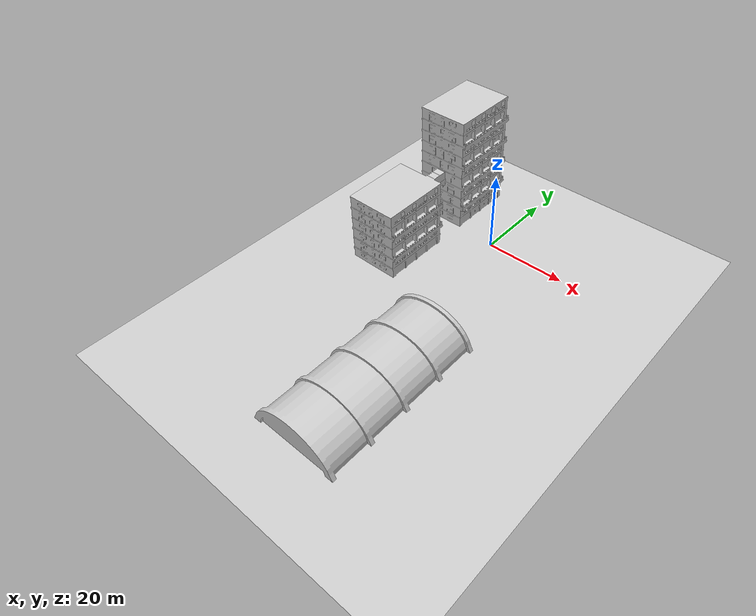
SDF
<?xml version="1.0" ?>
<sdf version="1.4">
  <world name="default">
    <include>
      <uri>model://ground_plane</uri>
    </include>
    <include>
      <uri>model://sun</uri>
    </include>
    <model name='Ville'>
      <static>1</static>
      <link name='Ville_link'>
        <visual name='Ville_visual'>
          <pose>0 0 0 0 -0 0</pose>
          <geometry>
            <mesh>
              <uri>model://ville/ville.dae</uri>
              <scale>0.5 0.5 0.5</scale>
            </mesh>
          </geometry>
        </visual>
        <collision name='colision'>
          <geometry>
            <mesh>
              <uri>model://ville/ville.dae</uri>
              <scale>0.5 0.5 0.5</scale>
            </mesh>
          </geometry>
          <surface>
            <contact>
              <collide_bitmask>65535</collide_bitmask>
              <ode>
                <max_vel>0</max_vel>
              </ode>
            </contact>
            <friction>
              <ode>
                <mu>1000</mu>
                <mu2>500</mu2>
              </ode>
              <torsional>
                <ode/>
              </torsional>
            </friction>
            <bounce>
              <restitution_coefficient>0</restitution_coefficient>
              <threshold>0</threshold>
            </bounce>
          </surface>
          <max_contacts>10</max_contacts>
        </collision>
        <self_collide>0</self_collide>
        <enable_wind>0</enable_wind>
        <kinematic>0</kinematic>
      </link>
      <pose>-16.6645 -3.31006 -0.6 0 -0 0</pose>
    </model>
  </world>
</sdf>
